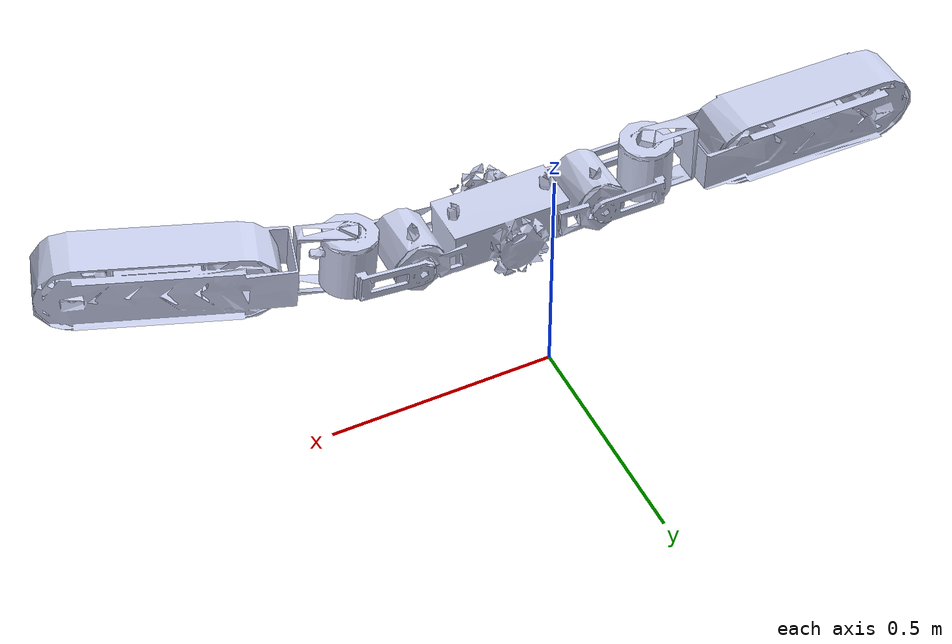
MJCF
<?xml version='1.0' encoding='UTF-8'?>
<mujoco model="snake_robot">
  <compiler angle="radian"/>
  <option timestep="0.002" gravity="0 0 -9.81" solver="Newton" iterations="50" integrator="implicitfast" cone="elliptic"/>
  <default>
    <default class="track_contact">
      <joint type="hinge" axis="0 1 0" limited="false" damping="0.05" armature="0.005"/>
      <geom type="capsule" quat="0.70710678 -0.70710678 0 0" rgba="0 0 0 0" friction="1 0.005 0.0001" condim="3" contype="1" conaffinity="1" mass="0.05"/>
    </default>
  </default>
  <asset>
    <mesh name="base_link" content_type="model/stl" file="../meshes/base_link.STL"/>
    <mesh name="front_link" content_type="model/stl" file="../meshes/front_link.STL"/>
    <mesh name="front_track" content_type="model/stl" file="../meshes/front_track.STL"/>
    <mesh name="back_link" content_type="model/stl" file="../meshes/back_link.STL"/>
    <mesh name="back_track" content_type="model/stl" file="../meshes/back_track.STL"/>
  </asset>
  <worldbody>
    <body name="base_link" pos="0 0 0.5" quat="1 0 0 0">
      <freejoint name="floating_base"/>
      <geom type="mesh" rgba="0.792157 0.819608 0.933333 1" mesh="base_link" contype="0" conaffinity="0" group="2"/>
      <geom name="base_link_collision"
            type="box"
            pos="0.1197 -0.0003 -0.0389"
            size="0.250 0.104 0.076"
            rgba="0 1 0 0"
            density="0"
            friction="0.30 0.005 0.0001"
            condim="3"
            contype="1"
            conaffinity="1"
            group="3"/>
      <body name="front_link" pos="-0.0765 -0.0745 -0.0465" quat="0.707105 0.707108 0 0">
        <inertial pos="-0.10865 0.017803 -0.076529" quat="0.497061 0.497362 0.502973 0.502573" mass="0.63341" diaginertia="0.00101974 0.00090037 0.000736405"/>
        <joint name="front_joint1" pos="0 0 0" axis="0 0 1" range="-3.14 3.14" actuatorfrcrange="-100 100" damping="0.8" armature="0.02"/>
        <geom type="mesh" rgba="0.79216 0.81961 0.93333 1" mesh="front_link" contype="0" conaffinity="0" group="2"/>
        <geom name="front_link_collision"
              type="box"
              pos="-0.0902 0.0233 -0.0745"
              size="0.116 0.058 0.073"
              rgba="0 1 0 0"
              density="0"
              friction="0.30 0.005 0.0001"
              condim="3"
              contype="1"
              conaffinity="1"
              group="3"/>
        <body name="front_track" pos="-0.12694 -0.047652 -0.0745" quat="0.707105 -0.707108 -0.000423734 0.000423733">
          <inertial pos="-0.33739 -0.00064039 0.05406" quat="0.49988 0.500306 0.499664 0.500149" mass="3.1288" diaginertia="0.025033 0.022341 0.0080057"/>
          <joint name="front_joint2" pos="0 0 0" axis="0 0 -1" range="-3.14 3.14" actuatorfrcrange="-100 100" damping="0.8" armature="0.02"/>
          <geom type="mesh" rgba="0.79216 0.81961 0.93333 1" mesh="front_track" contype="0" conaffinity="0" group="2"/>
          <geom name="front_track_collision"
                type="box"
                pos="-0.2881 -0.0081 0.0604"
                size="0.300 0.078 0.078"
                rgba="0 1 0 0"
                density="0"
                friction="0.30 0.005 0.0001"
                condim="3"
                contype="1"
                conaffinity="1"
                group="3"/>
          <body name="front_track_contact1" pos="-0.5 -0.008 0.025">
            <joint name="front_track_drive_joint" class="track_contact"/>
            <geom name="front_track_contact1_geom" class="track_contact" size="0.055 0.015"/>
          </body>
          <body name="front_track_contact2" pos="-0.3 -0.008 0.025">
            <joint name="front_track_roller2_joint" class="track_contact"/>
            <geom name="front_track_contact2_geom" class="track_contact" size="0.055 0.015"/>
          </body>
          <body name="front_track_contact3" pos="-0.1 -0.008 0.025">
            <joint name="front_track_roller3_joint" class="track_contact"/>
            <geom name="front_track_contact3_geom" class="track_contact" size="0.055 0.015"/>
          </body>
        </body>
      </body>
      <body name="back_link" pos="0.3165 -0.0745 -0.0465" quat="0.707105 0.707108 0 0">
        <inertial pos="0.10621 0.029044 -0.076537" quat="0.47619 0.476017 0.522731 0.522879" mass="0.63341" diaginertia="0.00101967 0.00090044 0.000736344"/>
        <joint name="back_joint1" pos="0 0 0" axis="0 0 1" range="-3.14 3.14" actuatorfrcrange="-100 100" damping="0.8" armature="0.02"/>
        <geom type="mesh" rgba="0.79216 0.81961 0.93333 1" mesh="back_link" contype="0" conaffinity="0" group="2"/>
        <geom name="back_link_collision"
              type="box"
              pos="0.0882 0.0365 -0.0745"
              size="0.112 0.063 0.073"
              rgba="0 1 0 0"
              density="0"
              friction="0.30 0.005 0.0001"
              condim="3"
              contype="1"
              conaffinity="1"
              group="3"/>
        <body name="back_track" pos="0.13122 -0.034146 -0.0745" quat="0.706162 -0.706165 -0.0365165 0.0365164">
          <inertial pos="0.32501 -0.084885 0.054393" quat="0.559637 0.559644 0.432211 0.432202" mass="2.8466" diaginertia="0.0243598 0.02133 0.00757138"/>
          <joint name="back_joint2" pos="0 0 0" axis="0 0 -1" range="-3.14 3.14" actuatorfrcrange="-100 100" damping="0.8" armature="0.02"/>
          <geom type="mesh" rgba="0.79216 0.81961 0.93333 1" mesh="back_track" contype="0" conaffinity="0" group="2"/>
          <geom name="back_track_collision"
                type="box"
                pos="0.2857 -0.0852 0.0604"
                size="0.295 0.112 0.078"
                rgba="0 1 0 0"
                density="0"
                friction="0.30 0.005 0.0001"
                condim="3"
                contype="1"
                conaffinity="1"
                group="3"/>
          <body name="back_track_contact1" pos="0.08 -0.085 0.025">
            <joint name="back_track_drive_joint" class="track_contact"/>
            <geom name="back_track_contact1_geom" class="track_contact" size="0.055 0.045"/>
          </body>
          <body name="back_track_contact2" pos="0.3 -0.085 0.025">
            <joint name="back_track_roller2_joint" class="track_contact"/>
            <geom name="back_track_contact2_geom" class="track_contact" size="0.055 0.045"/>
          </body>
          <body name="back_track_contact3" pos="0.52 -0.085 0.025">
            <joint name="back_track_roller3_joint" class="track_contact"/>
            <geom name="back_track_contact3_geom" class="track_contact" size="0.055 0.045"/>
          </body>
        </body>
      </body>
    </body>
  </worldbody>
  <!-- Structural links use simple box collision geoms. Track-ground traction remains anisotropic through explicit plane-capsule contact pairs. -->
  <contact>
    <!-- Adjacent simplified collision boxes are excluded so joint interfaces
         do not generate artificial self-contact when their boxes overlap slightly. -->
    <exclude name="exclude_base_front_link" body1="base_link" body2="front_link"/>
    <exclude name="exclude_front_link_track" body1="front_link" body2="front_track"/>
    <exclude name="exclude_base_back_link" body1="base_link" body2="back_link"/>
    <exclude name="exclude_back_link_track" body1="back_link" body2="back_track"/>
    <pair name="front_track_ground_1" geom1="floor" geom2="front_track_contact1_geom" condim="3" friction="1.5 1.0 0 0 0" solref="0.01 1" solimp="0.95 0.99 0.001 0.5 2"/>
    <pair name="front_track_ground_2" geom1="floor" geom2="front_track_contact2_geom" condim="3" friction="1.5 1.0 0 0 0" solref="0.01 1" solimp="0.95 0.99 0.001 0.5 2"/>
    <pair name="front_track_ground_3" geom1="floor" geom2="front_track_contact3_geom" condim="3" friction="1.5 1.0 0 0 0" solref="0.01 1" solimp="0.95 0.99 0.001 0.5 2"/>
    <pair name="back_track_ground_1" geom1="floor" geom2="back_track_contact1_geom" condim="3" friction="1.5 1.0 0 0 0" solref="0.01 1" solimp="0.95 0.99 0.001 0.5 2"/>
    <pair name="back_track_ground_2" geom1="floor" geom2="back_track_contact2_geom" condim="3" friction="1.5 1.0 0 0 0" solref="0.01 1" solimp="0.95 0.99 0.001 0.5 2"/>
    <pair name="back_track_ground_3" geom1="floor" geom2="back_track_contact3_geom" condim="3" friction="1.5 1.0 0 0 0" solref="0.01 1" solimp="0.95 0.99 0.001 0.5 2"/>
  </contact>
  <equality>
    <joint name="front_track_sync_2" joint1="front_track_roller2_joint" joint2="front_track_drive_joint" polycoef="0 1 0 0 0" solref="0.01 1"/>
    <joint name="front_track_sync_3" joint1="front_track_roller3_joint" joint2="front_track_drive_joint" polycoef="0 1 0 0 0" solref="0.01 1"/>
    <joint name="back_track_sync_2" joint1="back_track_roller2_joint" joint2="back_track_drive_joint" polycoef="0 1 0 0 0" solref="0.01 1"/>
    <joint name="back_track_sync_3" joint1="back_track_roller3_joint" joint2="back_track_drive_joint" polycoef="0 1 0 0 0" solref="0.01 1"/>
  </equality>
  <actuator>
    <motor name="f1_motor" joint="front_joint1" ctrlrange="-36 36" ctrllimited="true"/>
    <motor name="f2_motor" joint="front_joint2" ctrlrange="-36 36" ctrllimited="true"/>
    <motor name="b1_motor" joint="back_joint1" ctrlrange="-36 36" ctrllimited="true"/>
    <motor name="b2_motor" joint="back_joint2" ctrlrange="-36 36" ctrllimited="true"/>
    <velocity name="front_track_motor" joint="front_track_drive_joint" kv="12" ctrllimited="true" ctrlrange="-15 15" forcelimited="true" forcerange="-40 40"/>
    <velocity name="back_track_motor" joint="back_track_drive_joint" kv="12" ctrllimited="true" ctrlrange="-15 15" forcelimited="true" forcerange="-40 40"/>
  </actuator>
</mujoco>
